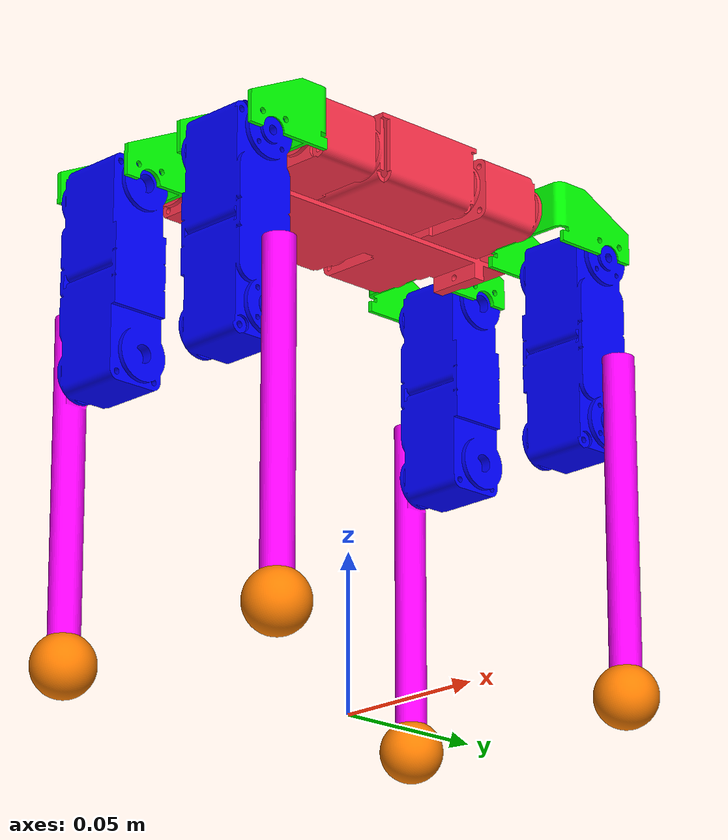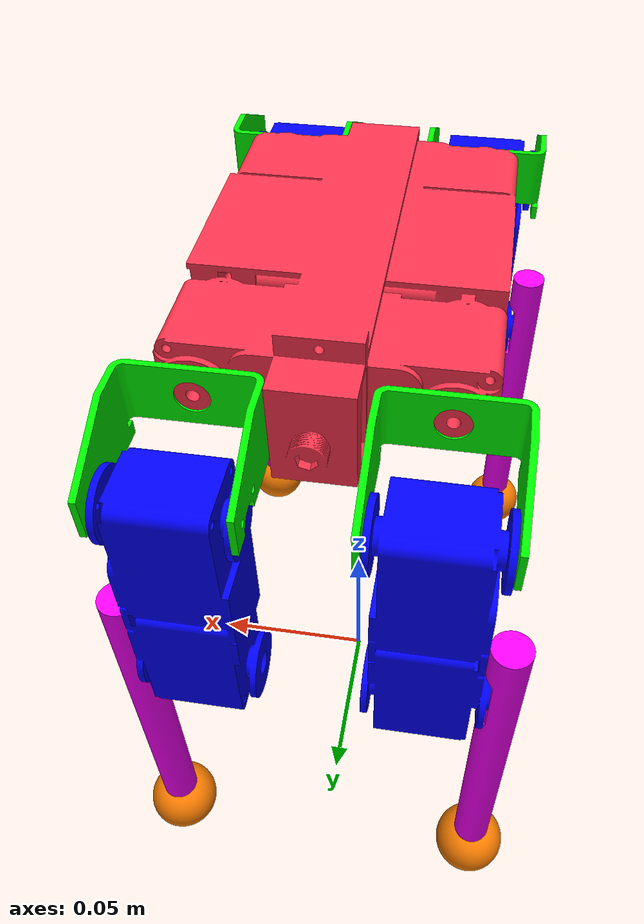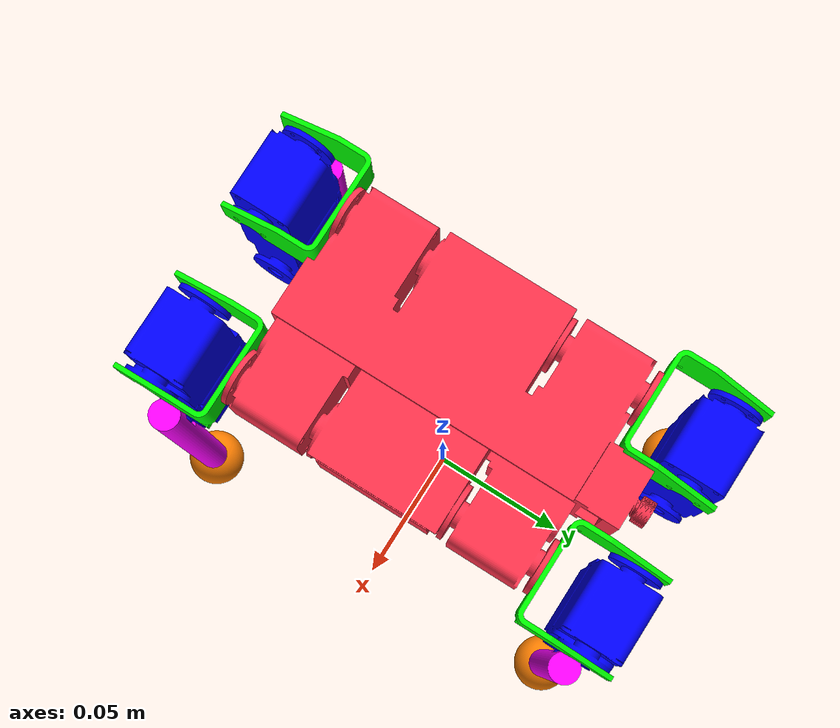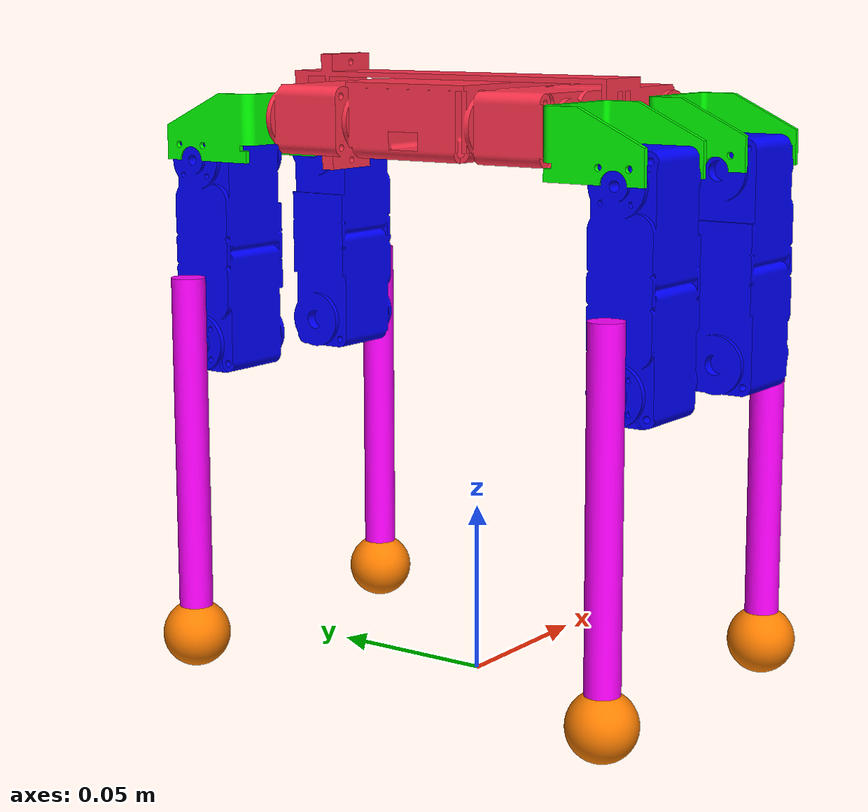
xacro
<?xml version="1.0"?>
<robot name="quarobo" xmlns:xacro="http://ros.org/wiki/xacro">

    <xacro:include filename="$(find quarobo_description)/urdf/leg/old_leg_sim.urdf.xacro"/>

    <link name="base_link"/>

    <!-- === body === -->
    <xacro:leg_macro_fi prefix="body" parent="base_link" mesh="body.stl" color="pink">
        <origin xyz="0 0 0.16505" rpy="0 0 0"/>
        <box size="0.07160 0.09810 0.02410"/>
    </xacro:leg_macro_fi>

    <!-- === Front right === -->
    <xacro:leg_macro_re prefix="FRS" parent="body_link" mesh="front_Shoulder_R.stl" color="green">
        <origin xyz="-0.027 -0.04905 -0.00075" rpy="0 0 0"/>
        <axis xyz="0 1 0"/>
        <origin xyz="0 -0.010259 -0.002339" rpy="0 0 0"/>
        <box size="0.032107 0.031304 0.01960"/>
    </xacro:leg_macro_re>

    <xacro:leg_macro_re prefix="FRL" parent="FRS_link" mesh="front_Leg_R.stl" color="blue">
        <origin xyz="0 -0.022304 -0.01230" rpy="1.57 0 0"/>
        <axis xyz="1 0 0"/>
        <origin xyz="0 -0.02700 0" rpy="0 0 0"/>
        <box size="0.02905 0.07160 0.01960"/>
    </xacro:leg_macro_re>

    <xacro:leg_macro_re prefix="FRF" parent="FRL_link" mesh="front_Foot_R.stl" color="purple">
        <origin xyz="-0.015546 -0.054 0" rpy="0 0 0"/>
        <axis xyz="1 0 0"/>
        <origin xyz="-0.003069 -0.030498 0" rpy="0 0 0"/>
        <box size="0.010 0.099465 0.010"/>
    </xacro:leg_macro_re>

    <xacro:leg_macro_fi prefix="FRT" parent="FRF_link" mesh="front_Toes_R.stl" color="orange">
        <origin xyz="-0.003 -0.088 0" rpy="0 0 0"/>
        <box size="0.020 0.020 0.020"/>
    </xacro:leg_macro_fi>

    <!-- === Front left === -->
    <xacro:leg_macro_re prefix="FLS" parent="body_link" mesh="front_Shoulder_L.stl" color="green">
        <origin xyz="0.027 -0.04905 -0.00075" rpy="0 0 0"/>
        <axis xyz="0 1 0"/>
        <origin xyz="0 -0.010259 -0.002339" rpy="0 0 0"/>
        <box size="0.032107 0.031304 0.01960"/>
    </xacro:leg_macro_re>

    <xacro:leg_macro_re prefix="FLL" parent="FLS_link" mesh="front_Leg_L.stl" color="blue">
        <origin xyz="0 -0.022304 -0.01230" rpy="1.57 0 0"/>
        <axis xyz="1 0 0"/>
        <origin xyz="0 -0.02700 0" rpy="0 0 0"/>
        <box size="0.02905 0.07160 0.01960"/>
    </xacro:leg_macro_re>

    <xacro:leg_macro_re prefix="FLF" parent="FLL_link" mesh="front_Foot_L.stl" color="purple">
        <origin xyz="0.015546 -0.054 0" rpy="0 0 0"/>
        <axis xyz="1 0 0"/>
        <origin xyz="0.003069 -0.030498 0" rpy="0 0 0"/>
        <box size="0.010 0.099465 0.010"/>
    </xacro:leg_macro_re>

    <xacro:leg_macro_fi prefix="FLT" parent="FLF_link" mesh="front_Toes_L.stl" color="orange">
        <origin xyz="0.003 -0.088 0" rpy="0 0 0"/>
        <box size="0.020 0.020 0.020"/>
    </xacro:leg_macro_fi>

    <!-- === Rear right === -->
    <xacro:leg_macro_re prefix="RRS" parent="body_link" mesh="rear_Shoulder_R.stl" color="green">
        <origin xyz="-0.027 0.04905 -0.00075" rpy="0 0 0"/>
        <axis xyz="0 1 0"/>
        <origin xyz="0 0.010259 -0.002339" rpy="0 0 0"/>
        <box size="0.032107 0.031304 0.01960"/>
    </xacro:leg_macro_re>

    <xacro:leg_macro_re prefix="RRL" parent="RRS_link" mesh="rear_Leg_R.stl" color="blue">
        <origin xyz="0 0.022304 -0.01230" rpy="-1.57 0 0"/>
        <axis xyz="1 0 0"/>
        <origin xyz="0 0.02700 0" rpy="0 0 0"/>
        <box size="0.02905 0.07160 0.01960"/>
    </xacro:leg_macro_re>

    <xacro:leg_macro_re prefix="RRF" parent="RRL_link" mesh="rear_Foot_R.stl" color="purple">
        <origin xyz="-0.015546 0.054 0" rpy="0 0 0"/>
        <axis xyz="1 0 0"/>
        <origin xyz="-0.003069 0.030498 0" rpy="0 0 0"/>
        <box size="0.010 0.099465 0.010"/>
    </xacro:leg_macro_re>

    <xacro:leg_macro_fi prefix="RRT" parent="RRF_link" mesh="rear_Toes_R.stl" color="orange">
        <origin xyz="-0.003 0.088 0" rpy="0 0 0"/>
        <box size="0.020 0.020 0.020"/>
    </xacro:leg_macro_fi>

    <!-- === Rear left === -->
    <xacro:leg_macro_re prefix="RLS" parent="body_link" mesh="rear_Shoulder_L.stl" color="green">
        <origin xyz="0.027 0.04905 -0.00075" rpy="0 0 0"/>
        <axis xyz="0 1 0"/>
        <origin xyz="0 0.010259 -0.002339" rpy="0 0 0"/>
        <box size="0.032107 0.031304 0.01960"/>
    </xacro:leg_macro_re>

    <xacro:leg_macro_re prefix="RLL" parent="RLS_link" mesh="rear_Leg_L.stl" color="blue">
        <origin xyz="0 0.022304 -0.01230" rpy="-1.57 0 0"/>
        <axis xyz="1 0 0"/>
        <origin xyz="0 0.02700 0" rpy="0 0 0"/>
        <box size="0.02905 0.07160 0.01960"/>
    </xacro:leg_macro_re>

    <xacro:leg_macro_re prefix="RLF" parent="RLL_link" mesh="rear_Foot_L.stl" color="purple">
        <origin xyz="0.015546 0.054 0" rpy="0 0 0"/>
        <axis xyz="1 0 0"/>
        <origin xyz="0.003069 0.030498 0" rpy="0 0 0"/>
        <box size="0.010 0.099465 0.010"/>
    </xacro:leg_macro_re>

    <xacro:leg_macro_fi prefix="RLT" parent="RLF_link" mesh="rear_Toes_L.stl" color="orange">
        <origin xyz="0.003 0.088 0" rpy="0 0 0"/>
        <box size="0.020 0.020 0.020"/>
    </xacro:leg_macro_fi>

    <gazebo>
        <plugin name="gazebo_ros_control" filename="libgazebo_ros_control.so">
            <robotNamespace>/quarobo</robotNamespace>
            <robotSimType>gazebo_ros_control/DefaultRobotHWSim</robotSimType>
            <legacyModeNS>true</legacyModeNS>
        </plugin>
    </gazebo>

</robot>

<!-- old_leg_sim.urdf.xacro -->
<robot xmlns:xacro="http://ros.org/wiki/xacro">

    <xacro:include filename="$(find quarobo_description)/urdf/material/material.urdf.xacro"/>

    <!-- === fixed === -->
    <xacro:macro name="leg_macro_fi" params="prefix parent mesh color *joint_origin *collision_size">

        <joint name="${prefix}_joint" type="fixed">
            <parent link="${parent}"/>
            <child link="${prefix}_link"/>
            <xacro:insert_block name="joint_origin"/>
        </joint>

        <link name="${prefix}_link">
            <inertial>
                <origin xyz="0 0 0" rpy="0 0 0"/>
                <mass value="0.020"/>
                <inertia
                    ixx="0.1" ixy="0" ixz="0"
                    iyy="0.1" iyz="0"
                    izz="0.1"/>
            </inertial>
            <visual>
                <origin xyz="0 0 0" rpy="0 0 0"/>
                <geometry>
                    <mesh filename="package://quarobo_description/meshes/origin_ros_quarobo_stlFiles/${mesh}"/>
                </geometry>
                <material name="${color}"/>
            </visual>
            <collision>
                <origin xyz="0 0 0" rpy="0 0 0"/>
                <geometry>
                    <xacro:insert_block name="collision_size"/>
                </geometry>
            </collision>
        </link>
        <gazebo reference="${prefix}_link">
            <material>Gazebo/White</material>
        </gazebo>

    </xacro:macro>

    <!-- === revolute === -->
    <xacro:macro name="leg_macro_re" params="prefix parent mesh color *joint_origin *joint_axis *collision_origin *collision_size">

        <joint name="${prefix}_joint" type="revolute">
            <parent link="${parent}"/>
            <child link="${prefix}_link"/>
            <xacro:insert_block name="joint_origin"/>
            <xacro:insert_block name="joint_axis"/>
            <limit lower="-2.61" upper="2.61" effort="1000" velocity="0.5"/>
            <dynamics damping="0.1"/>
        </joint>

        <transmission name="${prefix}_trans">
            <type>transmission_interface/SimpleTransmission</type>
            <joint name="${prefix}_joint">
                <hardwareInterface>hardware_interface/EffortJointInterface</hardwareInterface>
            </joint>
            <actuator name="${prefix}_motor">
                <hardwareInterface>hardware_interface/EffortJointInterface</hardwareInterface>
                <mechanismReduction>1</mechanismReduction>
            </actuator>
        </transmission>

        <link name="${prefix}_link">
            <inertial>
                <origin xyz="0 0 0" rpy="0 0 0"/>
                <mass value="0.020"/>
                <inertia
                    ixx="0.1" ixy="0" ixz="0"
                    iyy="0.1" iyz="0"
                    izz="0.1"/>
            </inertial>
            <visual>
                <origin xyz="0 0 0" rpy="0 0 0"/>
                <geometry>
                    <mesh filename="package://quarobo_description/meshes/origin_ros_quarobo_stlFiles/${mesh}"/>
                </geometry>
                <material name="${color}"/>
            </visual>
            <collision>
                <xacro:insert_block name="collision_origin"/>
                <geometry>
                    <xacro:insert_block name="collision_size"/>
                </geometry>
            </collision>
        </link>
        <gazebo reference="${prefix}_link">
            <material>Gazebo/White</material>
        </gazebo>

    </xacro:macro>

</robot>

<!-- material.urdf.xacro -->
<robot xmlns:xacro="http://ros.org/wiki/xacro">

    <material name="white">
        <color rgba="1.0 1.0 1.0 2.0"/>
    </material>
    <material name="red">
        <color rgba="1.0 0.0 0.0 2.0"/>
    </material>
    <material name="green">
        <color rgba="0.0 1.0 0.0 2.0"/>
    </material>
    <material name="blue">
        <color rgba="0.0 0.0 1.0 2.0"/>
    </material>
    <material name="purple">
        <color rgba="1.0 0.0 1.0 2.0"/>
    </material>
    <material name="pink">
        <color rgba="1.0 0.2 0.3 2.0"/>
    </material>
    <material name="orange">
        <color rgba="1.0 0.5 0.0 2.0"/>
    </material>

</robot>
